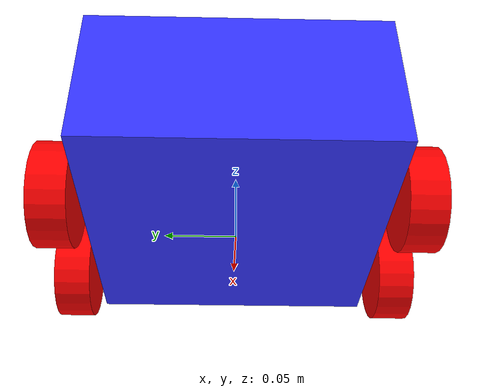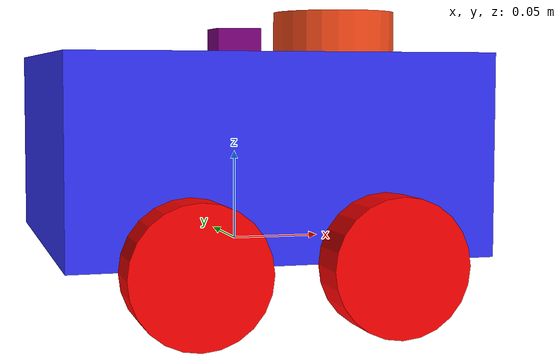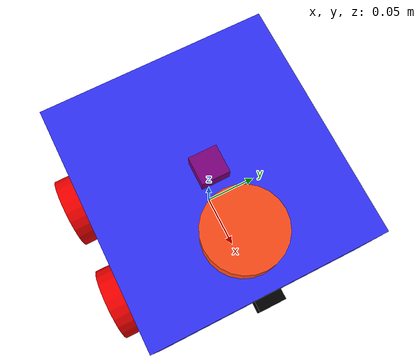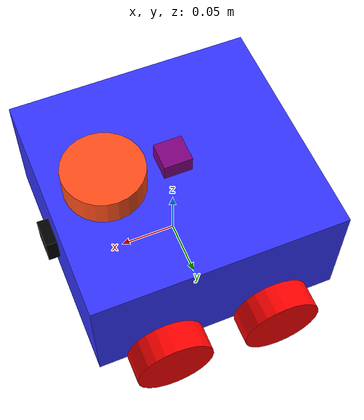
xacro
<?xml version="1.0"?>
<robot xmlns:xacro="https://www.ros.org/wiki/xacro" name="milo">

    <xacro:include filename="robot_core.xacro" />

    <!-- DIFF DRIVE CONTROL -->
    <xacro:include filename="controllers/diff_drive_control.xacro"/>

    <!-- CUSTOM ROS2 CONTROL -->

    <!-- LiDAR -->
    <xacro:include filename="sensors/lidar.xacro"/>

    <!-- Monocular RGB Camera -->
    <xacro:include filename="sensors/camera.xacro"/>

    <!-- TODO (james) Add mockup realsense depth camera -->

    <!-- IMU -->
    <xacro:include filename="sensors/imu.xacro"/>

</robot>

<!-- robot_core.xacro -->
<robot xmlns:xacro="http://www.ros.org/wiki/xacro">
<xacro:include filename="inertial_macros.xacro" />

    <material name="white">
        <color rgba="1 1 1 1"/>
    </material>

    <material name="orange">
        <color rgba="1 0.3 0.1 1"/>
    </material>

    <material name="blue">
        <color rgba="0.2 0.2 1 1"/>
    </material>

    <material name="black">
        <color rgba="0 0 0 1"/>
    </material>

    <material name="red">
        <color rgba="1 0 0 1"/>
    </material>

    <material name="purple">
        <color rgba="0.5 0 0.5 1"/>
    </material>

    <link name="base_link">
    </link>

  <!-- ROBOT FOOTPRINT -->
  <link name="base_footprint"/>

  <joint name="base_joint" type="fixed">
    <parent link="base_link"/>
    <child link="base_footprint"/>
    <origin xyz="0.0 0.0 -0.035" rpy="0 0 0"/>
  </joint>

    <!-- CHASSIS -->

    <joint name="chassis_joint" type="fixed">
        <parent link="base_link"/>
        <child link="chassis"/>
        <origin xyz="0 0 0.0525"/>
    </joint>

    <link name="chassis">
        <visual>
            <origin xyz="0.0 0.0 0.0" rpy="0 0 0"/>
            <geometry>
                <box size="0.220 0.210 0.105"/>
            </geometry>
            <material name="blue"/>
        </visual>
        <collision>
            <origin xyz="0.0 0 0.0" rpy="0 0 0"/>
            <geometry>
                <box size="0.220 0.210 0.105"/>
            </geometry>
        </collision>
        <xacro:inertial_box mass="0.5" x="0.220" y="0.210" z="0.105">
            <origin xyz="0.0 0 0.0" rpy="0 0 0"/>
        </xacro:inertial_box>
    </link>

    <gazebo reference="chassis">
        <material>Gazebo/Blue</material>
    </gazebo>

    <!-- LEFT REAR WHEEL -->

    <joint name="left_rear_wheel_joint" type="continuous">
        <parent link="base_link"/>
        <child link="left_rear_wheel"/>
        <origin xyz="-0.05 0.1175 0.0" rpy="-${pi/2} 0 0"/>
        <axis xyz="0 0 1"/>
    </joint>

    <link name="left_rear_wheel">
        <visual>
            <geometry>
                <cylinder length="0.025" radius="0.035" />
            </geometry>
            <material name="red"/>
        </visual>
        <collision>
            <geometry>
                <sphere radius="0.035" />
            </geometry>
            <material name="red"/>
        </collision>
        <xacro:inertial_sphere mass="0.1" radius="0.035">
            <origin xyz="0 0 0" rpy="0 0 0"/>
        </xacro:inertial_sphere>
    </link>

    <gazebo reference="left_rear_wheel">
        <material>Gazebo/Red</material>
        <mu1 value="0.2"/>
        <mu2 value="0.2"/>
    </gazebo>

    <!-- LEFT FRONT WHEEL -->
    <joint name="left_front_wheel_joint" type="continuous">
        <parent link="base_link"/>
        <child link="left_front_wheel"/>
        <origin xyz="0.05 0.1175 0.0" rpy="-${pi/2} 0 0"/>
        <axis xyz="0 0 1"/>
    </joint>

    <link name="left_front_wheel">
        <visual>
            <geometry>
                <cylinder length="0.025" radius="0.035" />
            </geometry>
            <material name="red"/>
        </visual>
        <collision>
            <geometry>
                <sphere radius="0.035" />
            </geometry>
            <material name="red"/>
        </collision>
        <xacro:inertial_sphere mass="0.1" radius="0.035">
            <origin xyz="0 0 0" rpy="0 0 0"/>
        </xacro:inertial_sphere>
    </link>

    <gazebo reference="left_front_wheel">
        <material>Gazebo/Red</material>
        <mu1 value="0.2"/>
        <mu2 value="0.2"/>
    </gazebo>

    <!-- RIGHT REAR WHEEL -->

    <joint name="right_rear_wheel_joint" type="continuous">
        <parent link="base_link"/>
        <child link="right_rear_wheel"/>
        <origin xyz="-0.05 -0.1175 0.0" rpy="${pi/2} 0 0"/>
        <axis xyz="0 0 -1"/>
    </joint>

    <link name="right_rear_wheel">
        <visual>
            <geometry>
                <cylinder length="0.025" radius="0.035" />
            </geometry>
            <material name="red"/>
        </visual>
        <collision>
            <geometry>
                <sphere radius="0.035" />
            </geometry>
            <material name="red"/>
        </collision>
        <xacro:inertial_sphere mass="0.1" radius="0.035">
            <origin xyz="0 0 0" rpy="0 0 0"/>
        </xacro:inertial_sphere>
    </link>

    <gazebo reference="right_rear_wheel">
        <material>Gazebo/Red</material>
        <mu1 value="0.2"/>
        <mu2 value="0.2"/>
    </gazebo>

    <!-- RIGHT FRONT WHEEL -->
    <joint name="right_front_wheel_joint" type="continuous">
        <parent link="base_link"/>
        <child link="right_front_wheel"/>
        <origin xyz="0.05 -0.1175 0.0" rpy="${pi/2} 0 0"/>
        <axis xyz="0 0 -1"/>
    </joint>

    <link name="right_front_wheel">
        <visual>
            <geometry>
                <cylinder length="0.025" radius="0.035" />
            </geometry>
            <material name="red"/>
        </visual>
        <collision>
            <geometry>
                <sphere radius="0.035" />
            </geometry>
            <material name="red"/>
        </collision>
        <xacro:inertial_sphere mass="0.1" radius="0.035">
            <origin xyz="0 0 0" rpy="0 0 0"/>
        </xacro:inertial_sphere>
    </link>

    <gazebo reference="right_front_wheel">
        <material>Gazebo/Red</material>
        <mu1 value="0.2"/>
        <mu2 value="0.2"/>
    </gazebo>

</robot>

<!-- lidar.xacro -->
<robot xmlns:xacro="http://www.ros.org/wiki/xacro">

    <joint name="laser_joint" type="fixed">
        <parent link= "chassis"/>
        <child link= "laser_frame"/>
        <origin xyz= "0.06 0 0.065" rpy="0 0 0"/>
    </joint>

    <link name="laser_frame">
        <visual>
            <geometry>
                <cylinder length="0.025" radius="0.035" />
            </geometry>
            <material name="orange"/>
        </visual>
        <collision>
            <geometry>
                <cylinder length="0.025" radius="0.035" />
            </geometry>
            <material name="orange"/>
        </collision>
        <xacro:inertial_cylinder mass="0.1" length="0.025" radius="0.035">
            <origin xyz="0 0 0" rpy="0 0 0"/>
        </xacro:inertial_cylinder>
    </link>

    <gazebo reference="laser_frame">
        <material>Gazebo/Orange</material>

        <sensor name="laser" type="ray">
            <pose> 0 0 0 0 0 0 </pose>
            <visualize>true</visualize>
            <update_rate>5.5</update_rate>
            <ray>
                <scan>
                    <horizontal>
                        <samples>360</samples>
                        <min_angle>-3.14</min_angle>
                        <max_angle>3.14</max_angle>
                    </horizontal>
                </scan>
                <range>
                    <min>0.20</min>
                    <max>12.0</max>
                </range>
            </ray>
            <plugin name="laser_controller" filename="libgazebo_ros_ray_sensor.so">
                <ros>
                    <namespace>/milo</namespace>
                    <remapping>~/out:=scan</remapping>
                </ros>
                <output_type>sensor_msgs/LaserScan</output_type>
                <frame_name>laser_frame</frame_name>
            </plugin>
        </sensor>
    </gazebo>
</robot>

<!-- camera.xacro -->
<robot xmlns:xacro="http://www.ros.org/wiki/xacro">

    <joint name="camera_joint" type="fixed">
        <parent link= "chassis"/>
        <child link= "camera_link"/>
        <origin xyz= "0.115 0 0" rpy="0 0 0"/>
    </joint>

    <link name="camera_link">
        <visual>
            <geometry>
                <box size="0.01 0.025 0.025"/>
            </geometry>
            <material name="black"/>
        </visual>
    </link>

    <joint name="camera_optical_joint" type="fixed">
        <origin xyz= "0 0 0" rpy= "${-pi/2} 0 ${-pi/2}"/>
        <parent link="camera_link"/>
        <child link="camera_link_optical"/>
    </joint>

    <link name="camera_link_optical"></link>

    <gazebo reference="camera_link">
        <material>Gazebo/Black</material>
        <sensor name="camera" type="camera">
            <pose> 0 0 0 0 0 0 </pose>
            <visualize>false</visualize>
            <update_rate>10</update_rate>
            <camera>
                <horizontal_fov>1.309</horizontal_fov>
                <image>
                    <format>R8G8B8</format>
                    <width>4056</width>
                    <height>3040</height>
                </image>
                <clip>
                    <near>0.05</near>
                    <far>8.0</far>
                </clip>
            </camera>
            <plugin name="camera_controller" filename="libgazebo_ros_camera.so">
                <frame_name>camera_link_optical</frame_name>
            </plugin>
        </sensor>
    </gazebo>

</robot>

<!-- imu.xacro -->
<robot xmlns:xacro="http://www.ros.org/wiki/xacro">

    <joint name="imu_joint" type="fixed">
        <parent link= "chassis"/>
        <child link= "imu_link"/>
        <origin xyz= "0 0 0.06" rpy="0 0 0"/>
    </joint>

    <link name="imu_link">
        <visual>
            <geometry>
                <box size="0.025 0.025 0.015"/>
            </geometry>
            <material name="purple"/>
        </visual>
        <collision>
            <geometry>
                <box size="0.025 0.025 0.015"/>
            </geometry>
            <material name="purple"/>
        </collision>
        <xacro:inertial_box mass="0.1" x="0.025" y="0.025" z="0.015">
            <origin xyz="0.0 0 0.0" rpy="0 0 0"/>
        </xacro:inertial_box>
    </link>

 <gazebo reference="imu_link">
  <sensor name="imu_sensor" type="imu">
   <plugin filename="libgazebo_ros_imu_sensor.so" name="imu_plugin">
      <ros>
        <namespace>/milo</namespace>
        <remapping>~/out:=imu</remapping>
      </ros>
      <initial_orientation_as_reference>false</initial_orientation_as_reference>
    </plugin>
    <always_on>true</always_on>
    <update_rate>100</update_rate>
    <visualize>true</visualize>
    <imu>
      <angular_velocity>
        <x>
          <noise type="gaussian">
            <mean>0.0</mean>
            <stddev>2e-4</stddev>
            <bias_mean>0.0000075</bias_mean>
            <bias_stddev>0.0000008</bias_stddev>
          </noise>
        </x>
        <y>
          <noise type="gaussian">
            <mean>0.0</mean>
            <stddev>2e-4</stddev>
            <bias_mean>0.0000075</bias_mean>
            <bias_stddev>0.0000008</bias_stddev>
          </noise>
        </y>
        <z>
          <noise type="gaussian">
            <mean>0.0</mean>
            <stddev>2e-4</stddev>
            <bias_mean>0.0000075</bias_mean>
            <bias_stddev>0.0000008</bias_stddev>
          </noise>
        </z>
      </angular_velocity>
      <linear_acceleration>
        <x>
          <noise type="gaussian">
            <mean>0.0</mean>
            <stddev>1.7e-2</stddev>
            <bias_mean>0.1</bias_mean>
            <bias_stddev>0.001</bias_stddev>
          </noise>
        </x>
        <y>
          <noise type="gaussian">
            <mean>0.0</mean>
            <stddev>1.7e-2</stddev>
            <bias_mean>0.1</bias_mean>
            <bias_stddev>0.001</bias_stddev>
          </noise>
        </y>
        <z>
          <noise type="gaussian">
            <mean>0.0</mean>
            <stddev>1.7e-2</stddev>
            <bias_mean>0.1</bias_mean>
            <bias_stddev>0.001</bias_stddev>
          </noise>
        </z>
      </linear_acceleration>
    </imu>
  </sensor>
</gazebo>
</robot>
